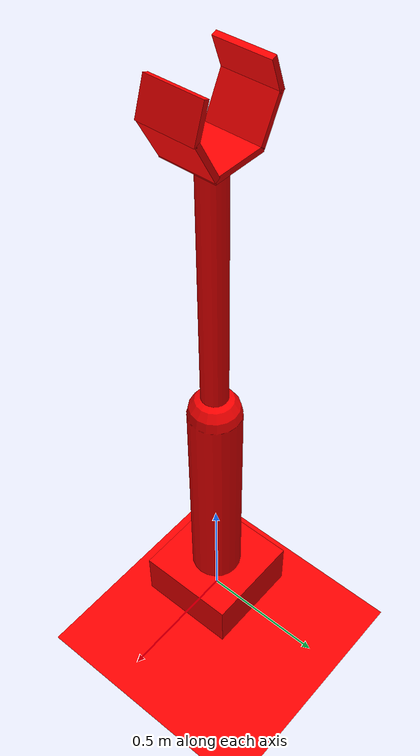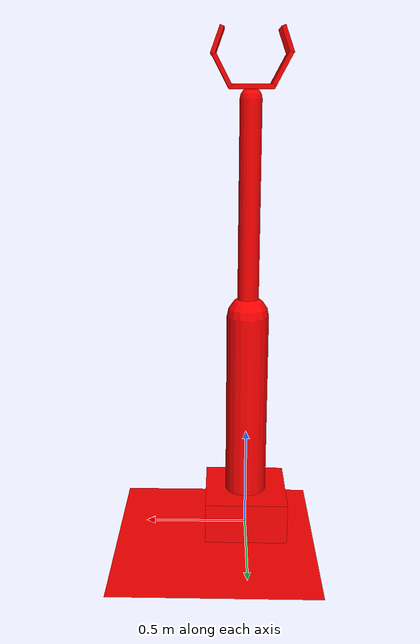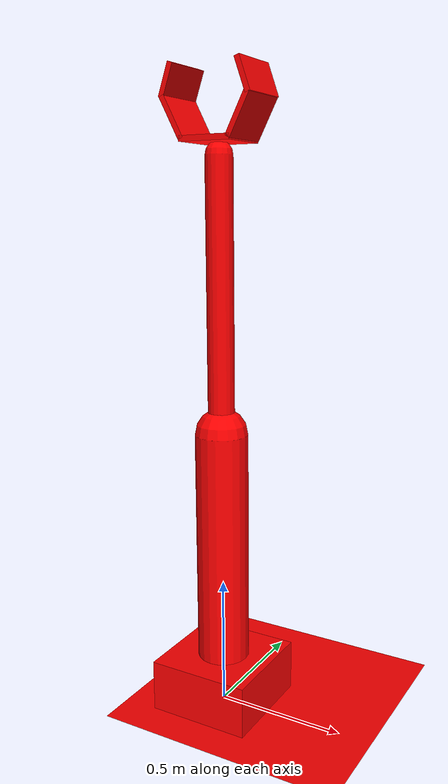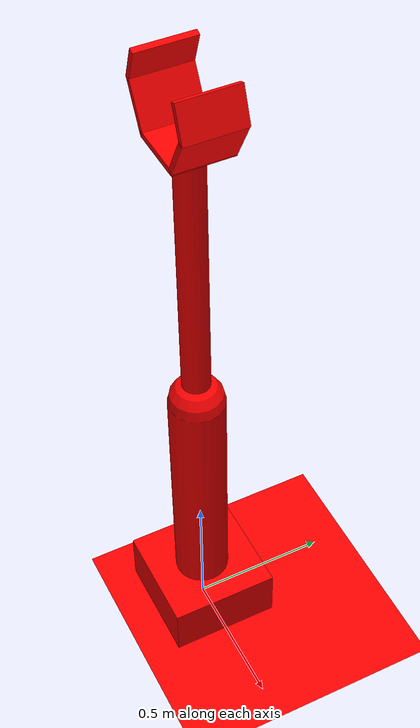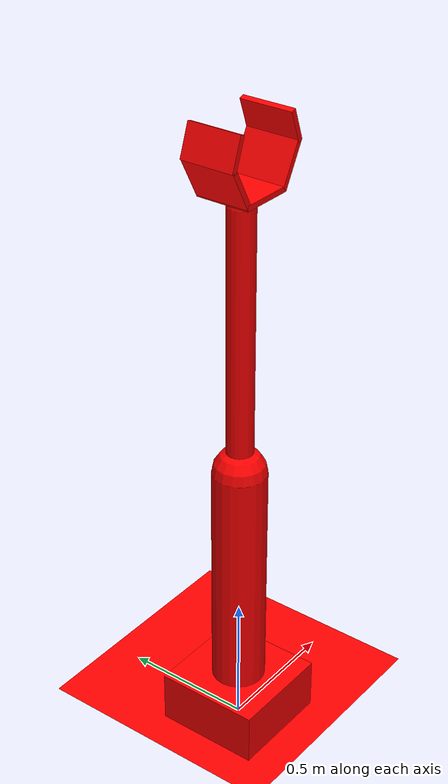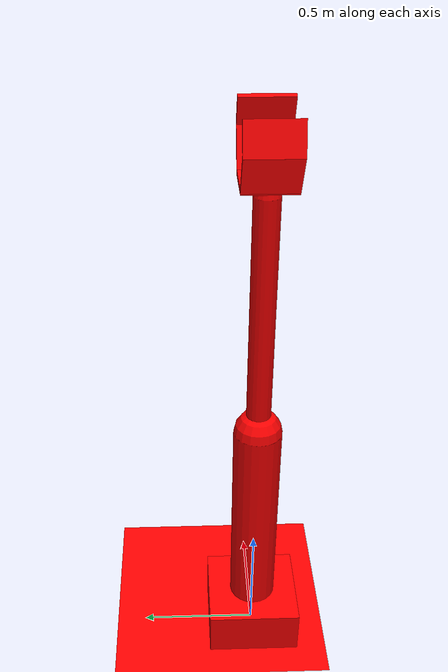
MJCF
<mujoco>
    <size njmax="3000" nconmax="1000"/>
    <option timestep="0.002"/>
    <default>
        <geom condim="1" density="1" rgba="1 0 0 1"/>
        <motor ctrlrange="-1 1" ctrllimited="true" forcerange="-1 1" forcelimited="true" gear="0.5 0 0 0 0 0"/>
    </default>
    <worldbody>
        <geom name="floor" size="5 5 0.1" type="plane" condim="6"/>
        <body name="robot" pos="0 0 .1">
            <camera name="vision" pos="0 0 .15" xyaxes="0 -1 0 .4 0 1" fovy="90"/>
            <geom name="base_box" type="box" size="0.2 0.2 0.1"/>
            <site name="robot" rgba="1 0 0 .1"/>
            <joint name="base_rotation" type="hinge" stiffness="1"/>
            <body name="lower_arm">
                <joint name="lower_arm_bend" type="hinge" axis="1 0 0" stiffness="1"/>
                <geom name="lower_arm_pill" type="capsule" fromto="0 0 0 0 0 1" size="0.1 0"/>
                <body name="upper_arm" pos="0 0 1">
                    <joint name="upper_arm_bend" type="hinge" axis="1 0 0" stiffness="1"/>
                    <geom name="upper_arm_pill" type="capsule" fromto="0 0 0 0 0 1" size="0.05 0"/>
                    <body name="palm"  euler="0 0 90" pos="0 0 1.05">
                        <geom name="palm" type="box" size="0.1 0.1 0.01"/>
                        <body name="lower_palm" pos="0 0.1 0">
                            <joint name="lower_palm_bend" type="hinge" axis="1 0 0" stiffness="1"/>
                            <geom name="lower_palm_base" type="box" pos="0 0.03 0.07" size="0.1 0.01 0.08 " quat="1 -0.25 0 0"/>
                            <geom name="lower_palm_tip" type="box" pos="0 0.05 0.19" size="0.1 0.06 0.01" quat="1 -0.7 0 0"/>
                        </body>
                        <body name="upper_palm" pos="0 -0.1 0" euler="0 0 180">
                            <joint name="upper_palm_bend" type="hinge" axis="1 0 0" stiffness="1"/>
                            <geom name="upper_palm_base" type="box" pos="0 0.03 0.07" size="0.1 0.01 0.08 " quat="1 -0.25 0 0"/>
                            <geom name="upper_palm_tip" type="box" pos="0 0.05 0.19" size="0.1 0.06 0.01" quat="1 -0.7 0 0"/>
                        </body>
                    </body>
                </body>
            </body>
        </body>
    </worldbody>
    <sensor>
        <!-- Used for observation -->
        <accelerometer site="robot" name="accelerometer"/>
        <velocimeter site="robot" name="velocimeter"/>
        <gyro site="robot" name="gyro"/>
        <magnetometer site="robot" name="magnetometer"/>

        <!-- Used for intrinsic constraints -->
        <subtreecom body="robot" name="subtreecom"/>
        <subtreelinvel body="robot" name="subtreelinvel"/>
        <subtreeangmom body="robot" name="subtreeangmom"/>
    </sensor>
    <actuator>
        <motor joint="base_rotation" gear="10 0 0 0 0 0"/>
        <motor joint="lower_arm_bend" gear="4 0 0 0 0 0"/>
        <motor joint="upper_arm_bend" gear="0.1 0 0 0 0 0"/>
        <motor joint="lower_palm_bend" gear="0.01 0 0 0 0 0"/>
        <motor joint="upper_palm_bend" gear="0.01 0 0 0 0 0"/>
    </actuator>
</mujoco>
